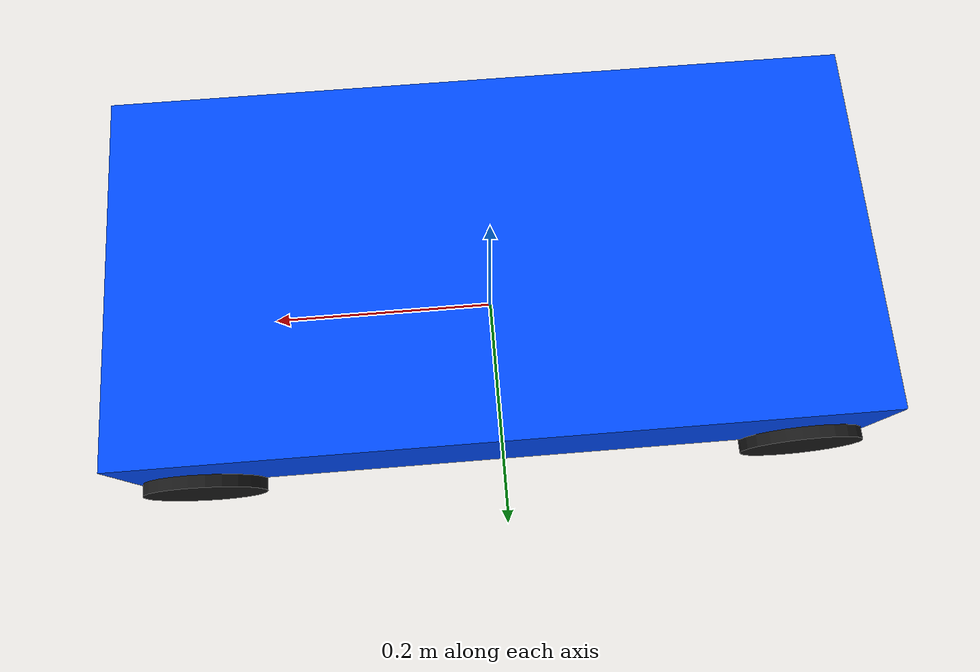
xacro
<?xml version="1.0"?>
<robot name="two_box_car" xmlns:xacro="http://www.ros.org/wiki/xacro">

  <!-- =====================
       Materials
  ===================== -->
  <xacro:macro name="material_color" params="name r g b a">
    <material name="${name}">
      <color rgba="${r} ${g} ${b} ${a}"/>
    </material>
  </xacro:macro>

  <!-- Define materials -->
  <xacro:material_color name="grey" r="0.6" g="0.6" b="0.6" a="1.0"/>
  <xacro:material_color name="blue" r="0.0" g="0.3" b="1.0" a="1.0"/>
  <xacro:material_color name="black" r="0.1" g="0.1" b="0.1" a="1.0"/>

  <!-- =====================
       Parameters
  ===================== -->
  <xacro:property name="wheel_radius" value="0.05"/>
  <xacro:property name="wheel_length" value="0.02"/>
  <xacro:property name="base_length" value="0.6"/>
  <xacro:property name="base_width" value="0.3"/>
  <xacro:property name="base_height" value="0.1"/>

  <!-- =====================
       Base Link
  ===================== -->
  <link name="base_link">
    <inertial>
      <mass value="5.0"/>
      <inertia ixx="0.1" ixy="0.0" ixz="0.0"
               iyy="0.1" iyz="0.0"
               izz="0.1"/>
    </inertial>
    <collision>
      <geometry>
        <box size="${base_length} ${base_width} ${base_height}"/>
      </geometry>
      <origin xyz="0 0 0.1" rpy="0 0 0"/>
    </collision>
    <visual>
      <geometry>
        <box size="${base_length} ${base_width} ${base_height}"/>
      </geometry>
      <origin xyz="0 0 0.1" rpy="0 0 0"/>
      <material name="blue"/>
    </visual>
  </link>

  <!-- ========= ADD ODOM (IMPORTANT) ========= -->
  <link name="odom"/>
  <joint name="odom_joint" type="fixed">
    <parent link="odom"/>
    <child link="base_link"/>
  </joint>

  <!-- =====================
       Wheel Macro
  ===================== -->
  <xacro:macro name="wheel" params="name x y joint_name">
    <link name="${name}">
      <inertial>
        <mass value="0.5"/>
        <inertia ixx="0.002" ixy="0" ixz="0"
                 iyy="0.002" iyz="0"
                 izz="0.001"/>
      </inertial>
      <collision>
        <geometry>
          <cylinder radius="${wheel_radius}" length="${wheel_length}"/>
        </geometry>
        <origin xyz="0 0 0" rpy="1.57 0 0"/>
      </collision>
      <visual>
        <geometry>
          <cylinder radius="${wheel_radius}" length="${wheel_length}"/>
        </geometry>
        <origin xyz="0 0 0" rpy="1.57 0 0"/>
        <material name="black"/>
      </visual>
    </link>

    <joint name="${joint_name}" type="continuous">
      <parent link="base_link"/>
      <child link="${name}"/>
      <origin xyz="${x} ${y} 0.05" rpy="0 0 0"/>
      <axis xyz="0 1 0"/>
    </joint>
  </xacro:macro>

  <xacro:wheel name="front_left_wheel"  x="0.25"  y="0.15" joint_name="front_left_wheel_joint"/>
<xacro:wheel name="front_right_wheel" x="0.25"  y="-0.15" joint_name="front_right_wheel_joint"/>
<xacro:wheel name="rear_left_wheel"   x="-0.25" y="0.15" joint_name="rear_left_wheel_joint"/>
<xacro:wheel name="rear_right_wheel"  x="-0.25" y="-0.15" joint_name="rear_right_wheel_joint"/>

<gazebo>
  <plugin name="diff_drive" filename="libgazebo_ros_diff_drive.so">
    <!--wheel information    -->
    <left_joint>rear_left_wheel_joint</left_joint>
    <right_joint>rear_right_wheel_joint</right_joint>
    <wheel_separation>0.35</wheel_separation>
    <wheel_diameter>0.1</wheel_diameter>

    <!--limits   -->
    <max_wheel_torque>200</max_wheel_torque>
    <max_wheel_acceleration>10.0</max_wheel_acceleration>

    <!--output   -->
    <odometry_frame>odom</odometry_frame>
    <robot_base_frame>base_link</robot_base_frame>

    <publish_odom>true</publish_odom>
    <publish_odom_tf>true</publish_odom_tf>
    <publish_wheel_tf>false</publish_wheel_tf>
  </plugin>
</gazebo>
</robot>
